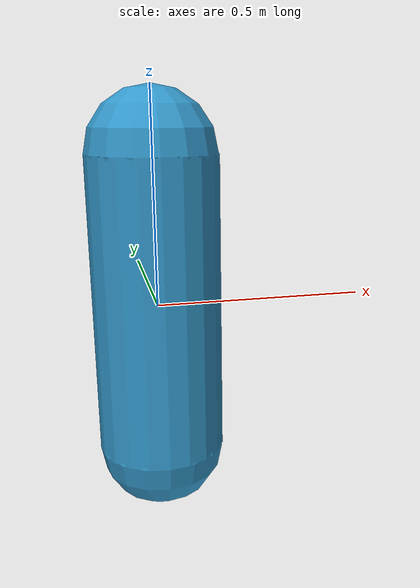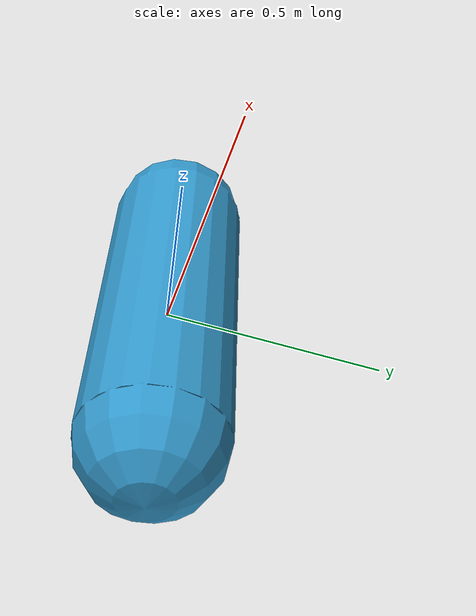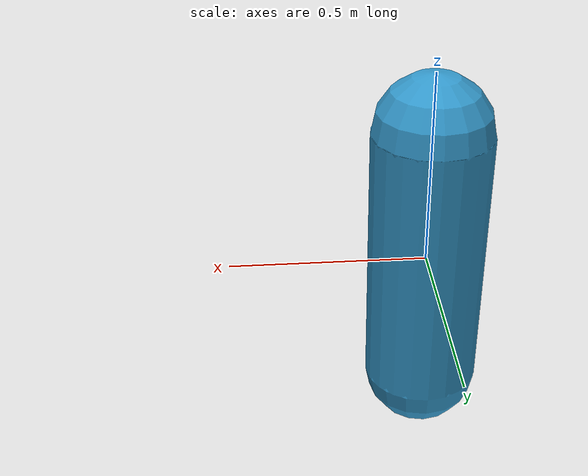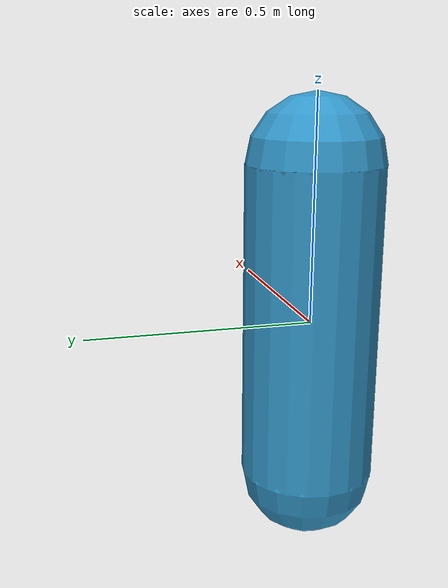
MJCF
<!-- 基础障碍几何体：胶囊（static，无 joint，有碰撞）。
     基础尺寸：半径 0.15m，半长 0.35m（总高约 0.8m），spawn 时通过 scale 缩放。
     颜色通过 OrcaGymScene.set_material_info 在 spawn 后覆盖。
     用于 Lesson 8 场景布景，为摄像头视频提供丰富的视觉内容。 -->
<mujoco model="obstacle_capsule">
  <worldbody>
    <body name="obstacle_capsule" pos="0 0 0">
      <geom name="capsule_geom" type="capsule" size="0.15 0.35" rgba="0.2 0.6 0.8 1"/>
    </body>
  </worldbody>
</mujoco>
